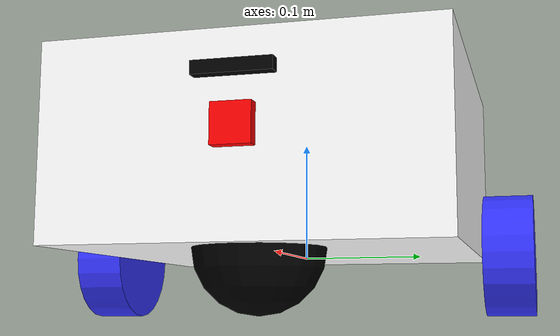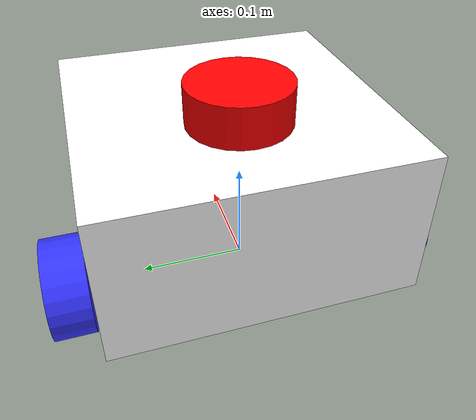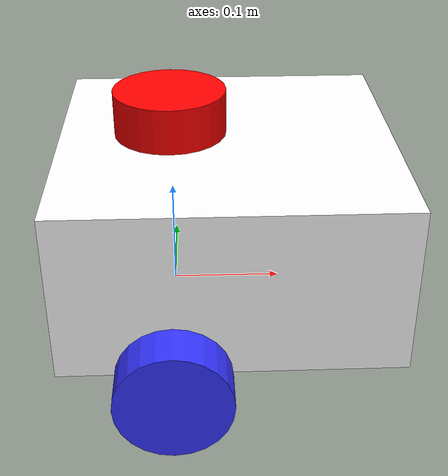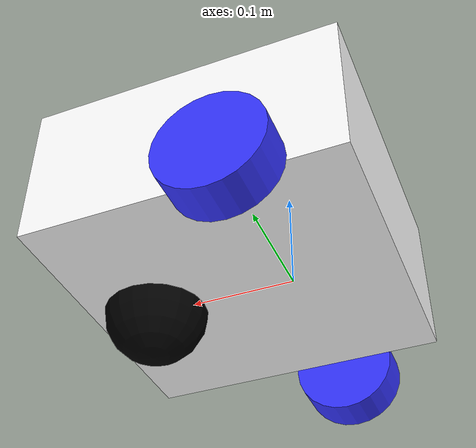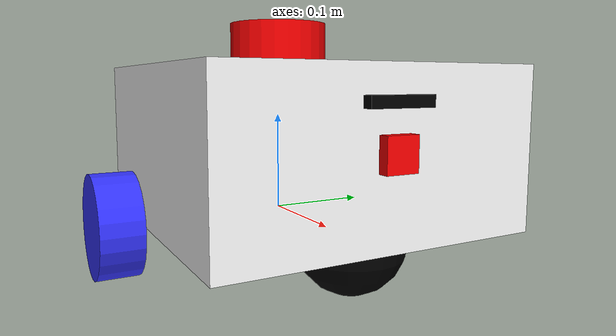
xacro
<?xml version="1.0"?>
<robot xmlns:xacro="http://www.ros.org/wiki/xacro"  name="robot">

    <xacro:include filename="robot_core.xacro" />

    <xacro:include filename="ros2_control.xacro"/>

    <xacro:include filename="lidar.xacro"/>

    <xacro:include filename="camera.xacro"/>

    <xacro:include filename="depth_camera.xacro"/>

</robot>

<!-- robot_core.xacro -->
<robot xmlns:xacro="http://www.ros.org/wiki/xacro">

    <xacro:include filename="inertial_macros.xacro" />

    <material name="white">
        <color rgba="1 1 1 1" />
    </material>

    <material name="orange">
        <color rgba="1 0.3 0.1 1" />
    </material>

    <material name="blue">
        <color rgba="0.2 0.2 1 1" />
    </material>

    <material name="black">
        <color rgba="0 0 0 1" />
    </material>

    <material name="red">
        <color rgba="1 0 0 1" />
    </material>

    <!-- base link -->

    <link name="base_link">
    </link>

    <!-- chassis link -->

    <joint name="base_chassis_joint" type="fixed">

        <parent link="base_link" />
        <child link="chassis_link" />
        <origin xyz="-0.1 0 0" />

    </joint>

    <link name="chassis_link">

        <visual>
            <geometry>
                <box size="0.3 0.3 0.15" />
            </geometry>
            <material name="white" />
            <origin xyz="0.15 0 0.075" />
        </visual>

        <collision>
            <geometry>
                <box size="0.3 0.3 0.15" />
            </geometry>
            <origin xyz="0.15 0 0.075" />
        </collision>

        <xacro:inertial_box mass="0.5" x="0.3" y="0.3" z="0.15">
            <origin xyz="0.15 0 0.075" rpy="0 0 0" />
        </xacro:inertial_box>

    </link>

    <gazebo> reference="chassis_link"
        <material>Gazebo/White</material>
    </gazebo>

    <!-- left wheel link -->

    <joint name="base_left_wheel_joint" type="continuous">

        <parent link="base_link" />
        <child link="left_wheel_link" />
        <origin xyz="0 0.175 0" rpy="-${pi/2} 0 0" />
        <axis xyz="0 0 1" />

    </joint>

    <link name="left_wheel_link">

        <visual>
            <geometry>
                <cylinder radius="0.05" length="0.04" />
            </geometry>
            <material name="blue" />
        </visual>

        <collision>
            <geometry>
                <cylinder radius="0.05" length="0.04" />
            </geometry>
        </collision>

        <xacro:inertial_cylinder mass="0.1" length="0.04" radius="0.05">
            <origin xyz="0 0 0" rpy="0 0 0" />
        </xacro:inertial_cylinder>

    </link>

    <gazebo reference="left_wheel_link">
        <material>Gazebo/Blue</material>
    </gazebo>

        <!-- right wheel link -->

        <joint name="base_right_wheel_joint" type="continuous">

            <parent link="base_link" />
            <child link="right_wheel_link" />
            <origin xyz="0 -0.175 0" rpy="${pi/2} 0 0" />
            <axis xyz="0 0 -1" />

        </joint>

        <link name="right_wheel_link">

            <visual>
                <geometry>
                    <cylinder radius="0.05" length="0.04" />
                </geometry>
                <material name="blue" />
            </visual>

            <collision>
                <geometry>
                    <cylinder radius="0.05" length="0.04" />
                </geometry>
            </collision>

            <xacro:inertial_cylinder mass="0.1" length="0.04" radius="0.05">
                <origin xyz="0 0 0" rpy="0 0 0" />
            </xacro:inertial_cylinder>

        </link>

        <gazebo reference="right_wheel_link">
            <material>Gazebo/Blue</material>
        </gazebo>

        <!-- caster wheel link -->

        <joint name="chassis_caster_wheel_joint" type="fixed">

            <parent link="chassis_link" />
            <child link="caster_wheel_link" />
            <origin xyz="0.24 0 0" />

        </joint>

        <link name="caster_wheel_link">

            <visual>
                <geometry>
                    <sphere radius="0.05" />
                </geometry>
                <material name="black" />
            </visual>

            <collision>
                <geometry>
                    <sphere radius="0.05" />
                </geometry>
            </collision>

            <xacro:inertial_sphere mass="0.1" radius="0.05">
                <origin xyz="0 0 0" rpy="0 0 0" />
            </xacro:inertial_sphere>

        </link>

        <gazebo reference="caster_wheel_link">
            <material>Gazebo/Black</material>
            <mu1 value="0.001" />
            <mu2 value="0.001" />
        </gazebo>

</robot>

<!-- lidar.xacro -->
<robot xmlns:xacro="http://www.ros.org/wiki/xacro">

    <joint name="chassis_laser_joint" type="fixed">

        <parent link="chassis_link" />
        <child link="laser_frame" />
        <origin xyz="0.1 0 0.175" rpy="0 0 0" />

    </joint>

    <link name="laser_frame">

        <visual>
            <geometry>
                <cylinder radius="0.05" length="0.04" />
            </geometry>
            <material name="red" />
        </visual>

        <collision>
            <geometry>
                <cylinder radius="0.05" length="0.04" />
            </geometry>
        </collision>

        <xacro:inertial_cylinder mass="0.1" length="0.04" radius="0.05">
            <origin xyz="0 0 0" rpy="0 0 0" />
        </xacro:inertial_cylinder>

    </link>

    <gazebo reference="laser_frame">

        <!-- Color definition in Gazebo -->
        <material>Gazebo/Red</material>

        <!-- ray type sensor -->
        <sensor name="laser" type="ray">

            <!-- x y z roll pitch yall (relative to the world frame) -->
            <pose> 0 0 0 0 0 0 </pose>
            <visualize>false</visualize>
            <update_rate>10</update_rate>
            <ray>
                <scan>
                    <!-- 2D Lidar so no vertical tag -->
                    <horizontal>
                        <samples>360</samples>
                        <min_angle>-3.14</min_angle>
                        <max_angle>3.14</max_angle>
                    </horizontal>
                </scan>
                <range>
                    <min>0.3</min>
                    <max>12</max>
                </range>
            </ray>

            <!-- laser controller plugin -->
            <plugin name="laser_controller" filename="libgazebo_ros_ray_sensor.so">
                <ros>
                    <argument>~/out:=scan</argument>
                </ros>
                <output_type>sensor_msgs/LaserScan</output_type>
                <frame_name>laser_frame</frame_name>
            </plugin>

        </sensor>

    </gazebo>

</robot>

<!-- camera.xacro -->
<robot xmlns:xacro="http://www.ros.org/wiki/xacro">

    <joint name="chassis_camera_joint" type="fixed">

        <parent link="chassis_link" />
        <child link="camera_link" />
        <origin xyz="0.305 0 0.08" rpy="0 0 0" />

    </joint>

    <link name="camera_link">

        <visual>
            <geometry>
                <box size="0.01 0.03 0.03" />
            </geometry>
            <material name="red" />
        </visual>

    </link>

    <joint name="chassis_camera_optical_joint" type="fixed">

        <parent link="camera_link" />
        <child link="camera_optical_link" />
        <origin xyz="0 0 0" rpy="${-pi/2} 0 ${-pi/2}" />

    </joint>

    <link name="camera_optical_link"></link>

    <gazebo reference="camera_link">

        <!-- Color definition in Gazebo -->
        <material>Gazebo/Red</material>
        <!-- Sensor tag for camera -->
        <sensor name="camera" type="camera">

            <pose> 0 0 0 0 0 0 </pose>
            <visualize>true</visualize>
            <update_rate>10</update_rate>
            <!-- camera params -->
            <camera>
                <!-- Field of Vision -->
                <horizontal_fov>1.089</horizontal_fov>
                <!-- image params -->
                <image>
                    <format>R8G8B8</format>
                    <width>640</width>
                    <height>480</height>
                </image>
                <!-- image clip -->
                <clip>
                    <near>0.05</near>
                    <far>8.0</far>
                </clip>

            </camera>
            <!-- gazebo camera control plugin -->
            <plugin name="camera_controller" filename="libgazebo_ros_camera.so">
                <frame_name>camera_link_optical</frame_name>
            </plugin>

        </sensor>

    </gazebo>

</robot>

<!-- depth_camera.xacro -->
<robot xmlns:xacro="http://www.ros.org/wiki/xacro">

    <joint name="chassis_depth_camera_joint" type="fixed">

        <parent link="chassis_link" />
        <child link="depth_camera_link" />
        <origin xyz="0.305 0 0.12" rpy="0 0 0" />

    </joint>

    <link name="depth_camera_link">

        <visual>
            <geometry>
                <box size="0.01 0.06 0.01" />
            </geometry>
            <material name="black" />
        </visual>

    </link>

    <joint name="chassis_depth_camera_optical_joint" type="fixed">

        <parent link="depth_camera_link" />
        <child link="depth_camera_optical_link" />
        <origin xyz="0 0 0" rpy="${-pi/2} 0 ${-pi/2}" />

    </joint>

    <link name="depth_camera_optical_link"></link>

    <gazebo reference="depth_camera_link">

        <!-- Color definition in Gazebo -->
        <material>Gazebo/Black</material>
        <!-- Sensor tag for camera -->
        <sensor name="depth_camera" type="depth">

            <pose> 0 0 0 0 0 0 </pose>
            <visualize>true</visualize>
            <update_rate>30</update_rate>
            <!-- camera params -->
            <camera>
                <!-- Field of Vision -->
                <horizontal_fov>1.089</horizontal_fov>
                <!-- image params -->
                <image>
                    <format>R8G8B8</format>
                    <width>640</width>
                    <height>480</height>
                </image>
                <!-- image clip -->
                <clip>
                    <near>0.05</near>
                    <far>8.0</far>
                </clip>

            </camera>
            <!-- gazebo camera control plugin -->
            <plugin name="depth_camera_controller" filename="libgazebo_ros_camera.so">
                <frame_name>depth_camera_optical_link</frame_name>
                <min_depth>0.1</min_depth>
                <max_depth>100.0</max_depth>
            </plugin>

        </sensor>

    </gazebo>

</robot>
